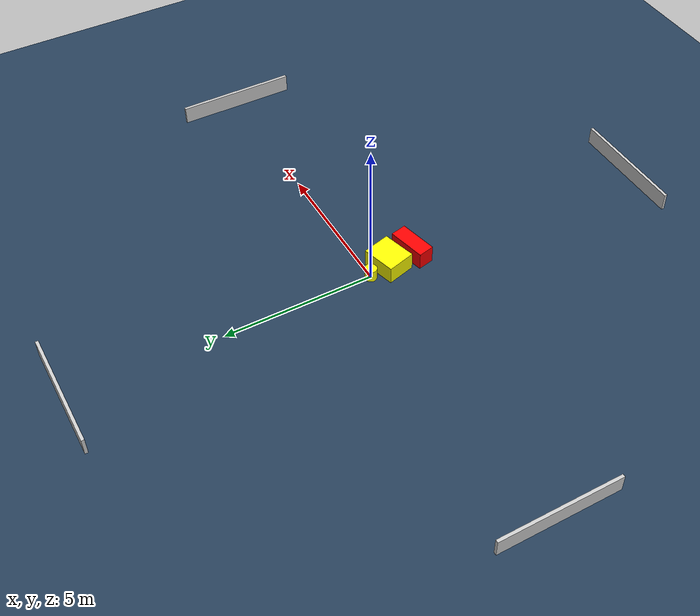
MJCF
<?xml version="1.0" ?>
<mujoco model="generated_environment">
  <option timestep="0.01" integrator="RK4" cone="elliptic"/>
  <default>
    <geom density="1"/>
  </default>
  <asset>
    <texture builtin="gradient" height="3072" name="skybox" rgb1="0.3 0.5 0.7" rgb2="0 0 0" type="skybox" width="512"/>
    <texture builtin="checker" height="300" name="groundplane" rgb1="0.2 0.3 0.4" rgb2="0.1 0.2 0.3" type="2d" width="300"/>
    <material name="groundplane" reflectance="0.2" texrepeat="5 5" texture="groundplane"/>
  </asset>
  <worldbody>
    <light dir="0 0 -1" directional="true" pos="0 0 1.5"/>
    <geom condim="3" friction="0.5 0.005 0.001" material="groundplane" name="floor" pos="0 0 0" size="0 0 0.05" type="plane"/>
    <body name="walls">
      <geom name="wall_1" condim="4" pos="-10.0 0.0 0.3" rgba="0.800000011920929 0.800000011920929 0.800000011920929 1.0" size="0.05 2.0 0.3" type="box"/>
      <geom name="wall_2" condim="4" pos="10.0 0.0 0.3" rgba="0.800000011920929 0.800000011920929 0.800000011920929 1.0" size="0.05 2.0 0.3" type="box"/>
      <geom name="wall_3" condim="4" pos="0.0 -10.0 0.3" rgba="0.800000011920929 0.800000011920929 0.800000011920929 1.0" size="2.0 0.05 0.3" type="box"/>
      <geom name="wall_4" condim="4" pos="0.0 10.0 0.3" rgba="0.800000011920929 0.800000011920929 0.800000011920929 1.0" size="2.0 0.05 0.3" type="box"/>
    </body>
    <body name="robot">
      <joint name="joint_x" type="slide" pos="0 0 0" axis="1 0 0"/>
      <joint name="joint_y" type="slide" pos="0 0 0" axis="0 1 0"/>
      <geom name="robot" type="cylinder" pos="0.0 0.0 0.2" size="0.2 0.2 0.0" mass="5.0" friction="1.0 0.005 0.0001" condim="4" rgba="1.0 1.0 0.0 1.0"/>
    </body>
    <body name="obstacle_1_movable">
      <geom name="obstacle_1_movable" condim="4" pos="0.1577144373109512 -0.730105523227117 0.3" euler="0 0 105.36913539560874" friction="0.0 0.005 0.001" rgba="1.0 1.0 0.0 1.0" size="0.4744407046126767 0.5674664877968554 0.3" type="box" mass="0.1"/>
      <joint type="free"/>
    </body>
    <body name="obstacle_2_static">
      <geom name="obstacle_2_static" condim="4" pos="0.2655816931555552 -1.6455563931132973 0.3" euler="0 0 12.85793831760623" friction="0.0 0.005 0.001" rgba="1.0 0.0 0.0 1.0" size="0.6472675439201813 0.2693347541535031 0.3" type="box"/>
    </body>
  </worldbody>
  <actuator>
    <motor name="actuator_x" joint="joint_x" gear="1" ctrlrange="-1 1"/>
    <motor name="actuator_y" joint="joint_y" gear="1" ctrlrange="-1 1"/>
  </actuator>
</mujoco>
